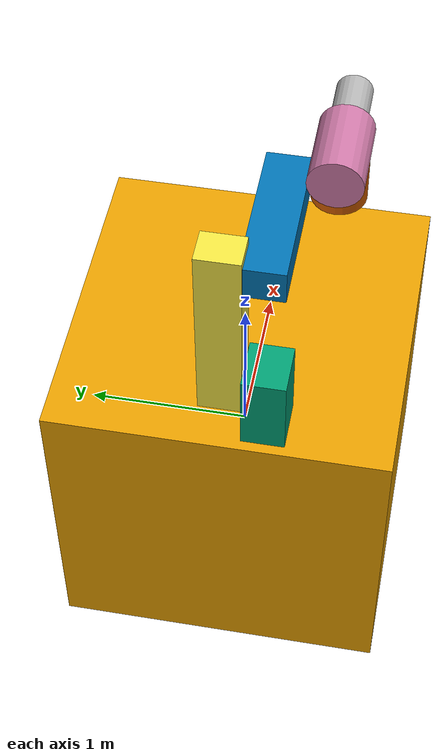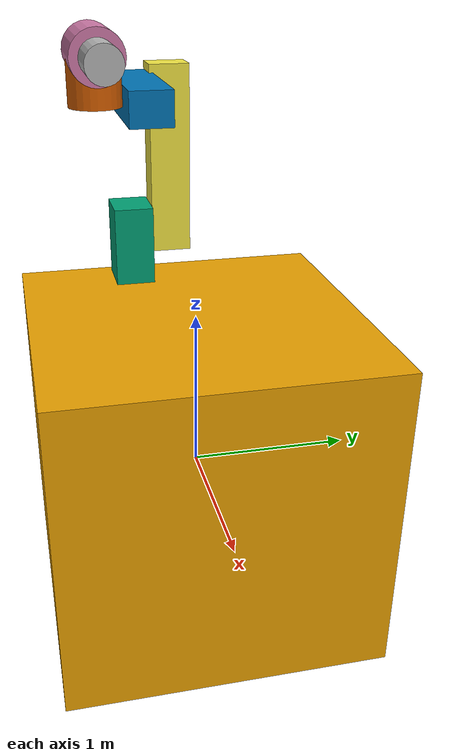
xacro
<?xml version="1.0"?>
<robot name="ets_vii" xmlns:xacro="http://www.ros.org/wiki/xacro">
  <xacro:include filename="$(find simulation)/models/ets_vii/urdf/ets_vii.gazebo.xacro" />
  <xacro:ets_vii_gazebo command_interface="effort" />

  <link name="base_link">
    <visual>
      <origin rpy="0 0 0" xyz="0 0 0" />
      <geometry>
        <box size="2 2 2" />
      </geometry>
    </visual>
    <inertial>
      <mass value="2552"/>
      <inertia ixx="6221" ixy="54.8" ixz="118.1" iyy="3581" iyz="-16.3" izz="7073"/>
    </inertial>
  </link>

  <link name="docking_interface">
    <visual>
      <origin rpy="0 0 0" xyz="0 0 0" />
      <geometry>
        <box size="0.65 0.65 0.03" />
      </geometry>
      <material name="white"/>
    </visual>
    <inertial>
      <mass value="0.01"/>
      <inertia ixx="1.22" ixy="-0.0731" ixz="0.0007" iyy="0.513" iyz="0.113" izz="1.33"/>
    </inertial>
  </link>

  <joint name="docking_interface_joint" type="fixed">
    <parent link="base_link" />
    <child link="docking_interface" />
    <origin xyz="0.0 0.0 -1.0" rpy="0 0 0" />
  </joint>

  <link name="link_1">
    <visual>
      <origin rpy="0 0 0" xyz="0.025 0 0.25" />
      <geometry>
        <box size="0.25 0.3 0.5" />
      </geometry>
    </visual>
    <inertial>
      <mass value="35"/>
      <inertia ixx="1.22" ixy="-0.0731" ixz="0.0007" iyy="0.513" iyz="0.113" izz="1.33"/>
    </inertial>
  </link>

  <joint name="joint1" type="fixed">
    <axis xyz="0 0 1"/>
    <limit effort="1000.0" lower="-3.0" upper="3.0" velocity="0.5"/>
    <parent link="base_link" />
    <child link="link_1" />
    <origin xyz="-0.79 -0.29 1" rpy="0.0 0.0 ${0.5 * pi}"  />
  </joint>

  <link name="link_2">
    <visual>
      <origin rpy="0 0 0" xyz="0.125 0 0.435" />
      <geometry>
        <box size="0.25 0.2 1.17" />
      </geometry>
    </visual>
    <collision>
      <geometry>
        <box size="0.25 0.2 1.17" />
      </geometry>
    </collision>
    <inertial>
      <mass value="22.7"/>
      <inertia ixx="0.10" ixy="0" ixz="-0.0021" iyy="3.38" iyz="0" izz="3.36"/>
    </inertial>
  </link>

  <joint name="joint2" type="fixed">
    <axis xyz="1 0 0"/>
    <limit effort="1000.0" lower="-3.0" upper="3.0" velocity="0.5"/>
    <parent link="link_1" />
    <child link="link_2" />
    <origin xyz="0.15 0 0.35" />
  </joint>

   <link name="link_3">
    <visual>
      <origin rpy="0 0 0" xyz="0.025 0 0.350" />
      <geometry>
        <box size="0.25 0.2 0.86" />
      </geometry>
    </visual>
    <collision>
      <geometry>
        <box size="0.25 0.2 0.86" />
      </geometry>
    </collision>
    <inertial>
      <mass value="21.4"/>
      <inertia ixx="0.43" ixy="0" ixz="-0.633" iyy="2.27" iyz="0" izz="1.91"/>
    </inertial>
  </link>

  <joint name="joint3" type="fixed">
    <axis xyz="-1 0 0"/>
    <limit effort="1000.0" lower="-3.0" upper="3.0" velocity="0.5"/>
    <parent link="link_2" />
    <child link="link_3" />
    <origin xyz="-0.125 0 0.87" rpy="${0.5 * pi} 0.0 0.0" />
  </joint>

  <link name="link_4">
    <visual>
      <origin rpy="0 0 0" xyz="0 0 0.127" />
      <geometry>
        <cylinder radius="0.15" length="0.250"/>
      </geometry>
    </visual>
    <collision>
      <geometry>
        <cylinder radius="0.15" length="0.250"/>
      </geometry>
    </collision>
    <inertial>
      <mass value="16.8"/>
      <inertia ixx="0.39" ixy="0" ixz="0.0168" iyy="0.396" iyz="0" izz="0.0727"/>
    </inertial>
  </link>

   <joint name="joint4" type="fixed">
    <axis xyz="1 0 0"/>
    <limit effort="1000.0" lower="-3.0" upper="3.0" velocity="0.5"/>
    <parent link="link_3" />
    <child link="link_4" />
    <origin xyz="-0.262 0 0.63" rpy="${-0.5 * pi} 0.0 0.0" />
  </joint>

  <link name="link_5">
    <visual>
      <origin rpy="0 1.57079 0" xyz="0 0 0" />
      <geometry>
        <cylinder radius="0.15" length="0.450"/>
      </geometry>
    </visual>
    <collision>
      <geometry>
        <cylinder radius="0.15" length="0.450"/>
      </geometry>
    </collision>
    <inertial>
      <mass value="26.2"/>
      <inertia ixx="0.57" ixy="0" ixz="-0.231" iyy="0.599" iyz="0" izz="0.258"/>
    </inertial>
  </link>

   <joint name="joint5" type="fixed">
    <axis xyz="0 0 1"/>
    <limit effort="1000.0" lower="-3.0" upper="3.0" velocity="0.5"/>
    <parent link="link_4" />
    <child link="link_5" />
    <origin xyz="0 0 0.277" rpy="0.0 0.0 ${-0.5 * pi}"/>
  </joint>

  <link name="link_6">
    <visual>
      <origin rpy="0 1.57079 0" xyz="0.141 0 0" />
      <geometry>
        <cylinder radius="0.1" length="0.307"/>
      </geometry>
    </visual>
    <collision>
      <geometry>
       <cylinder radius="0.1" length="0.307"/>
      </geometry>
    </collision>
    <inertial>
      <mass value="18.1"/>
      <inertia ixx="0.17" ixy="0.00078" ixz="-0.015" iyy="0.24" iyz="-0.000137" izz="0.14"/>
    </inertial>
  </link>

  <joint name="joint6" type="fixed">
    <axis xyz="1 0 0"/>
    <limit effort="1000.0" lower="-3.0" upper="3.0" velocity="0.5"/>
    <parent link="link_5" />
    <child link="link_6" />
    <origin xyz="0.225 0 0" rpy="0 0 0" />
  </joint>

</robot>

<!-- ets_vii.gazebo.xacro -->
<robot xmlns:xacro="http://wiki.ros.org/xacro">
  <xacro:macro name="ets_vii_gazebo" params="command_interface:=effort">

  <ros2_control name="IgnitionSystem" type="system">
      <hardware>
          <plugin>ign_ros2_control/IgnitionSystem</plugin>
      </hardware>
      <joint name="docking_interface_joint">
          <command_interface name="${command_interface}"/>
          <state_interface name="position"/>
          <state_interface name="velocity"/>
          <state_interface name="effort"/>
      </joint>
      <joint name="joint1">
          <command_interface name="${command_interface}"/>
          <state_interface name="position"/>
          <state_interface name="velocity"/>
          <state_interface name="effort"/>
      </joint>
      <joint name="joint2">
          <command_interface name="${command_interface}"/>
          <state_interface name="position"/>
          <state_interface name="velocity"/>
          <state_interface name="effort"/>
      </joint>
      <joint name="joint3">
          <command_interface name="${command_interface}"/>
          <state_interface name="position"/>
          <state_interface name="velocity"/>
          <state_interface name="effort"/>
      </joint>
      <joint name="joint4">
          <command_interface name="${command_interface}"/>
          <state_interface name="position"/>
          <state_interface name="velocity"/>
          <state_interface name="effort"/>
      </joint>
      <joint name="joint5">
          <command_interface name="${command_interface}"/>
          <state_interface name="position"/>
          <state_interface name="velocity"/>
          <state_interface name="effort"/>
      </joint>
      <joint name="joint6">
          <command_interface name="${command_interface}"/>
          <state_interface name="position"/>
          <state_interface name="velocity"/>
          <state_interface name="effort"/>
      </joint>
  </ros2_control>

  <gazebo>
    <plugin filename="ignition-gazebo-pose-publisher-system" name="ignition::gazebo::systems::PosePublisher">
      <publish_link_pose>true</publish_link_pose>
      <publish_model_pose>true</publish_model_pose>
      <publish_nested_model_pose>true</publish_nested_model_pose>
      <use_pose_vector_msg>false</use_pose_vector_msg>
      <update_frequency>10</update_frequency>
    </plugin>
    <plugin filename="ignition-gazebo-odometry-publisher-system"
          name="ignition::gazebo::systems::OdometryPublisher">
      <dimensions>3</dimensions>
      <odom_publish_frequency>10</odom_publish_frequency>
      <odom_frame>odom</odom_frame>
      <robot_base_frame>base_link</robot_base_frame>
    </plugin>
  </gazebo>

  <gazebo reference="docking_interface">
    <material>Gazebo/White</material>
  </gazebo>

  <!-- Colors -->
  <material name="white">
    <color rgba="1 1 1 1"/>
  </material>

  <material name="blue">
    <color rgba="0 0 1 1"/>
  </material>

  <material name="red">
    <color rgba="1 0 0 1"/>
  </material>

  </xacro:macro>
</robot>
